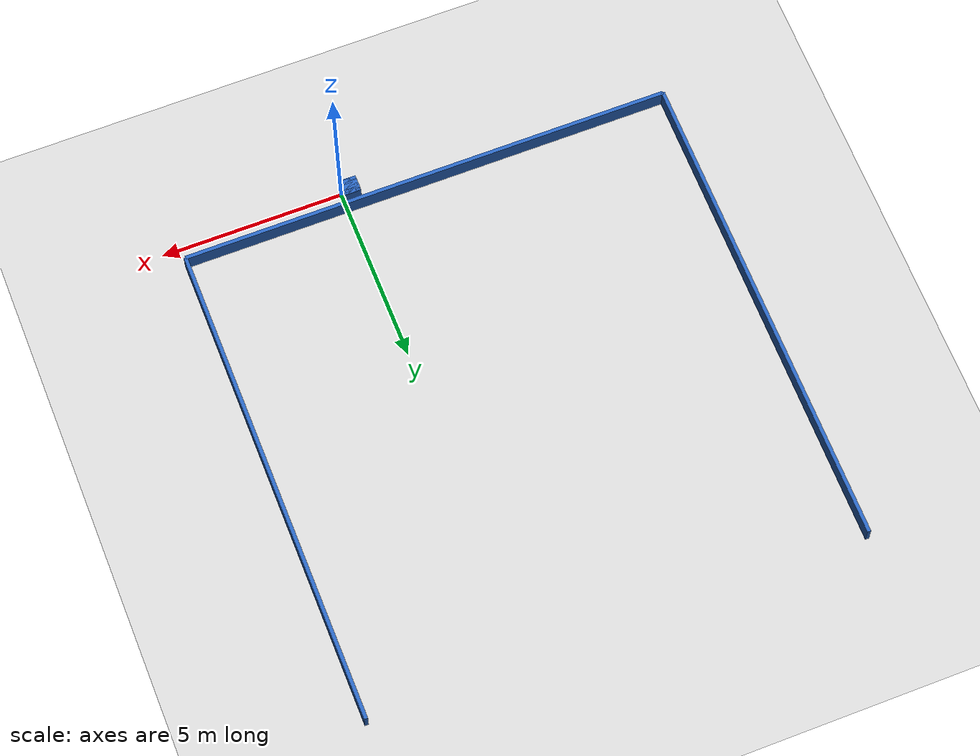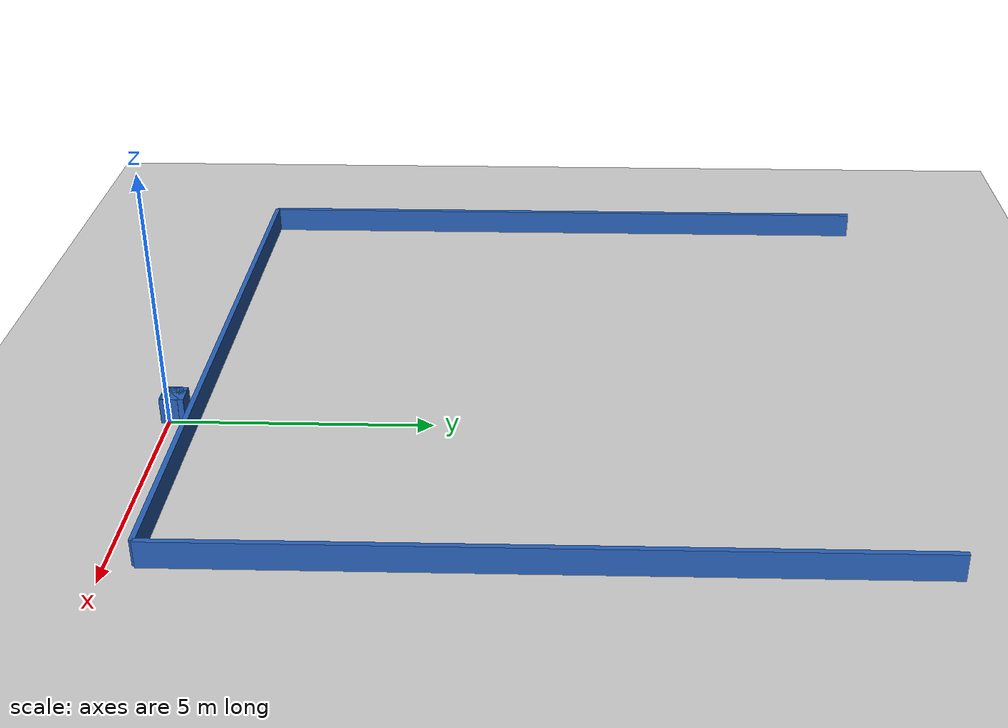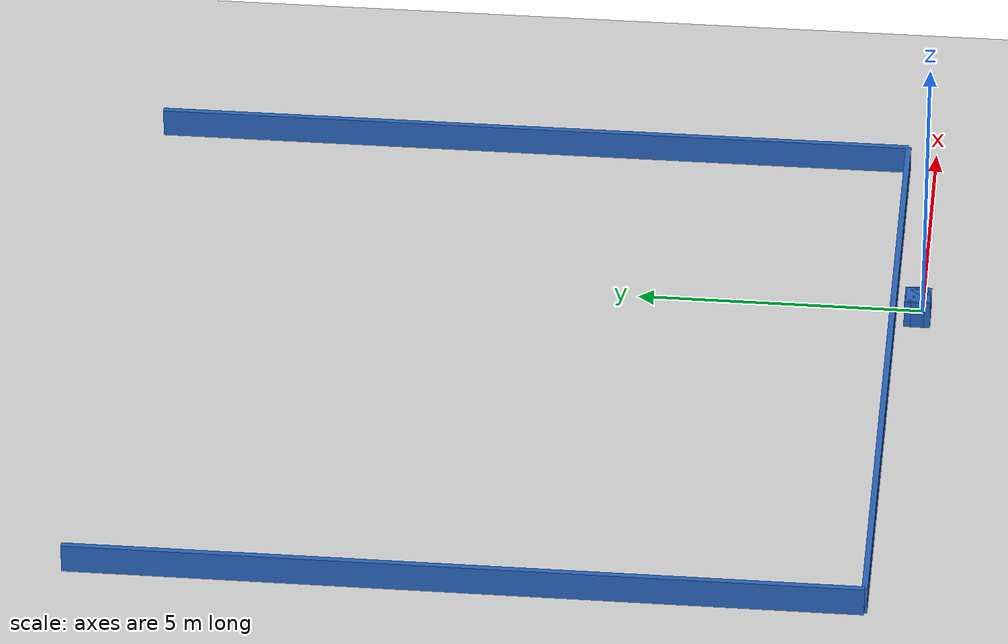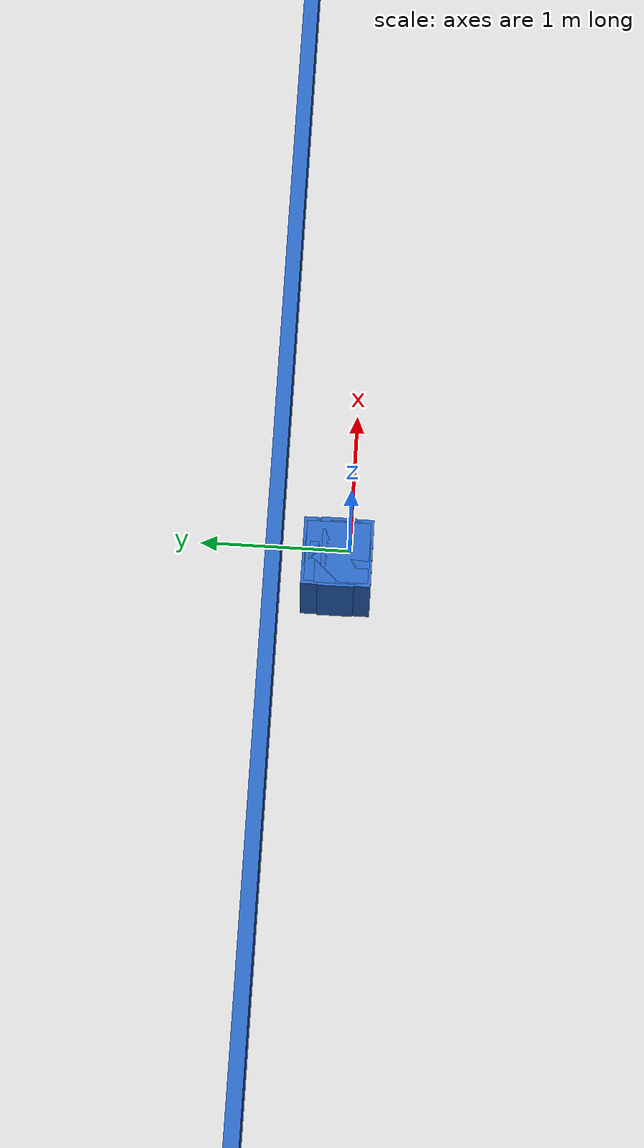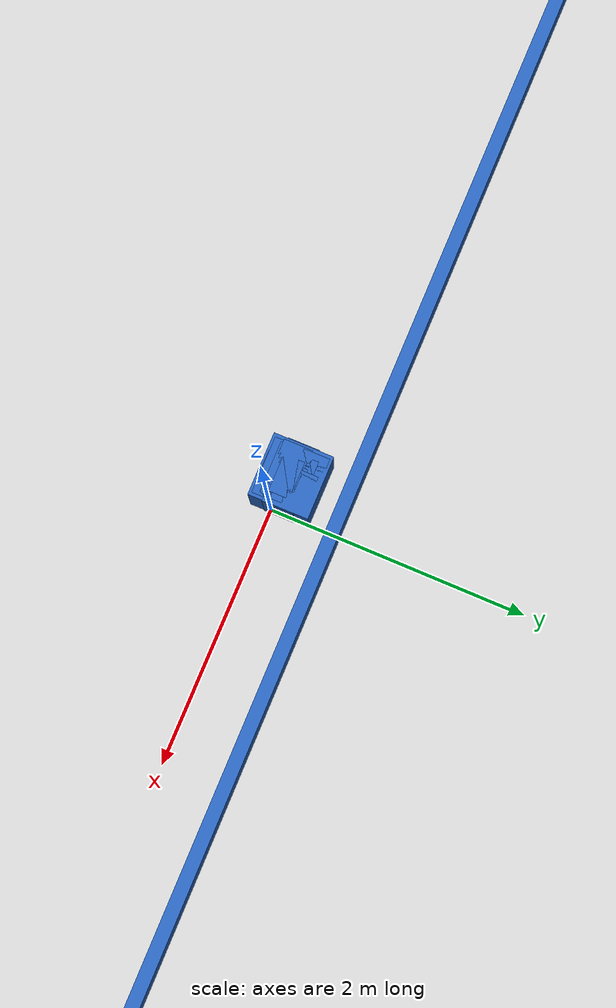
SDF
<?xml version="1.0" ?>
    <sdf version="1.5">
      <world name="default">
        <!-- A global light source -->
        <include>
          <uri>model://sun</uri>
        </include>
        <!-- A ground plane -->
        <include>
          <uri>model://ground_plane</uri>
        </include>

    <model name='libopen_space_final_T2B_103_85'>
      <static>1</static>
      <pose frame=''>-0.225000 0.075000 0.000000 0.000000 0.000000 0.000000</pose>
      <link name='link'>
        <inertial>
          <mass>1</mass>
          <inertia>
            <ixx>0.145833</ixx>
            <ixy>0</ixy>
            <ixz>0</ixz>
            <iyy>0.145833</iyy>
            <iyz>0</iyz>
            <izz>0.125</izz>
          </inertia>
        </inertial>
        <collision name='collision'>
          <geometry>
            <box>
              <size>0.32 0.21 1</size>
            </box>
          </geometry>
          <max_contacts>10</max_contacts>
          <surface>
            <contact>
              <ode/>
            </contact>
            <bounce/>
            <friction>
              <torsional>
                <ode/>
              </torsional>
              <ode/>
            </friction>
          </surface>
        </collision>
        <visual name='visual'>
          <geometry>
            <box>
              <size>0.32 0.21 1</size>
            </box>
          </geometry>
	    <material>
              <ambient>0.152000 0.379000 0.720000 1</ambient>
	      <diffuse>0.152000 0.379000 0.720000 1</diffuse>
          </material>
          <material>
            <script>
              <name>Gazebo/Grey</name>
              <uri>file://media/materials/scripts/gazebo.material</uri>
            </script>
          </material>
        </visual>
        <self_collide>0</self_collide>
        <kinematic>0</kinematic>
        <gravity>1</gravity>
      </link>
      <plugin name='libopen_space_final_T2B_103_85' filename='libopen_space_final_T2B_103_85.so'/>
    </model>

    <model name='libopen_space_final_T2B_120_45'>
      <static>1</static>
      <pose frame=''>-0.225000 0.075000 0.000000 0.000000 0.000000 0.000000</pose>
      <link name='link'>
        <inertial>
          <mass>1</mass>
          <inertia>
            <ixx>0.145833</ixx>
            <ixy>0</ixy>
            <ixz>0</ixz>
            <iyy>0.145833</iyy>
            <iyz>0</iyz>
            <izz>0.125</izz>
          </inertia>
        </inertial>
        <collision name='collision'>
          <geometry>
            <box>
              <size>0.43 0.42 1</size>
            </box>
          </geometry>
          <max_contacts>10</max_contacts>
          <surface>
            <contact>
              <ode/>
            </contact>
            <bounce/>
            <friction>
              <torsional>
                <ode/>
              </torsional>
              <ode/>
            </friction>
          </surface>
        </collision>
        <visual name='visual'>
          <geometry>
            <box>
              <size>0.43 0.42 1</size>
            </box>
          </geometry>
	    <material>
              <ambient>0.152000 0.379000 0.720000 1</ambient>
	      <diffuse>0.152000 0.379000 0.720000 1</diffuse>
          </material>
          <material>
            <script>
              <name>Gazebo/Grey</name>
              <uri>file://media/materials/scripts/gazebo.material</uri>
            </script>
          </material>
        </visual>
        <self_collide>0</self_collide>
        <kinematic>0</kinematic>
        <gravity>1</gravity>
      </link>
      <plugin name='libopen_space_final_T2B_120_45' filename='libopen_space_final_T2B_120_45.so'/>
    </model>

    <model name='libopen_space_final_T2B_111_12'>
      <static>1</static>
      <pose frame=''>-0.225000 0.075000 0.000000 0.000000 0.000000 0.000000</pose>
      <link name='link'>
        <inertial>
          <mass>1</mass>
          <inertia>
            <ixx>0.145833</ixx>
            <ixy>0</ixy>
            <ixz>0</ixz>
            <iyy>0.145833</iyy>
            <iyz>0</iyz>
            <izz>0.125</izz>
          </inertia>
        </inertial>
        <collision name='collision'>
          <geometry>
            <box>
              <size>0.45 0.29 1</size>
            </box>
          </geometry>
          <max_contacts>10</max_contacts>
          <surface>
            <contact>
              <ode/>
            </contact>
            <bounce/>
            <friction>
              <torsional>
                <ode/>
              </torsional>
              <ode/>
            </friction>
          </surface>
        </collision>
        <visual name='visual'>
          <geometry>
            <box>
              <size>0.45 0.29 1</size>
            </box>
          </geometry>
	    <material>
              <ambient>0.152000 0.379000 0.720000 1</ambient>
	      <diffuse>0.152000 0.379000 0.720000 1</diffuse>
          </material>
          <material>
            <script>
              <name>Gazebo/Grey</name>
              <uri>file://media/materials/scripts/gazebo.material</uri>
            </script>
          </material>
        </visual>
        <self_collide>0</self_collide>
        <kinematic>0</kinematic>
        <gravity>1</gravity>
      </link>
      <plugin name='libopen_space_final_T2B_111_12' filename='libopen_space_final_T2B_111_12.so'/>
    </model>

    <model name='libopen_space_final_T2B_122_2'>
      <static>1</static>
      <pose frame=''>-0.225000 0.075000 0.000000 0.000000 0.000000 0.000000</pose>
      <link name='link'>
        <inertial>
          <mass>1</mass>
          <inertia>
            <ixx>0.145833</ixx>
            <ixy>0</ixy>
            <ixz>0</ixz>
            <iyy>0.145833</iyy>
            <iyz>0</iyz>
            <izz>0.125</izz>
          </inertia>
        </inertial>
        <collision name='collision'>
          <geometry>
            <box>
              <size>0.49 0.24 1</size>
            </box>
          </geometry>
          <max_contacts>10</max_contacts>
          <surface>
            <contact>
              <ode/>
            </contact>
            <bounce/>
            <friction>
              <torsional>
                <ode/>
              </torsional>
              <ode/>
            </friction>
          </surface>
        </collision>
        <visual name='visual'>
          <geometry>
            <box>
              <size>0.49 0.24 1</size>
            </box>
          </geometry>
	    <material>
              <ambient>0.152000 0.379000 0.720000 1</ambient>
	      <diffuse>0.152000 0.379000 0.720000 1</diffuse>
          </material>
          <material>
            <script>
              <name>Gazebo/Grey</name>
              <uri>file://media/materials/scripts/gazebo.material</uri>
            </script>
          </material>
        </visual>
        <self_collide>0</self_collide>
        <kinematic>0</kinematic>
        <gravity>1</gravity>
      </link>
      <plugin name='libopen_space_final_T2B_122_2' filename='libopen_space_final_T2B_122_2.so'/>
    </model>

    <model name='libopen_space_final_T2B_125_48'>
      <static>1</static>
      <pose frame=''>-0.225000 0.075000 0.000000 0.000000 0.000000 0.000000</pose>
      <link name='link'>
        <inertial>
          <mass>1</mass>
          <inertia>
            <ixx>0.145833</ixx>
            <ixy>0</ixy>
            <ixz>0</ixz>
            <iyy>0.145833</iyy>
            <iyz>0</iyz>
            <izz>0.125</izz>
          </inertia>
        </inertial>
        <collision name='collision'>
          <geometry>
            <box>
              <size>0.48 0.46 1</size>
            </box>
          </geometry>
          <max_contacts>10</max_contacts>
          <surface>
            <contact>
              <ode/>
            </contact>
            <bounce/>
            <friction>
              <torsional>
                <ode/>
              </torsional>
              <ode/>
            </friction>
          </surface>
        </collision>
        <visual name='visual'>
          <geometry>
            <box>
              <size>0.48 0.46 1</size>
            </box>
          </geometry>
	    <material>
              <ambient>0.152000 0.379000 0.720000 1</ambient>
	      <diffuse>0.152000 0.379000 0.720000 1</diffuse>
          </material>
          <material>
            <script>
              <name>Gazebo/Grey</name>
              <uri>file://media/materials/scripts/gazebo.material</uri>
            </script>
          </material>
        </visual>
        <self_collide>0</self_collide>
        <kinematic>0</kinematic>
        <gravity>1</gravity>
      </link>
      <plugin name='libopen_space_final_T2B_125_48' filename='libopen_space_final_T2B_125_48.so'/>
    </model>

    <model name='libopen_space_final_T2B_85_42'>
      <static>1</static>
      <pose frame=''>-0.225000 0.075000 0.000000 0.000000 0.000000 0.000000</pose>
      <link name='link'>
        <inertial>
          <mass>1</mass>
          <inertia>
            <ixx>0.145833</ixx>
            <ixy>0</ixy>
            <ixz>0</ixz>
            <iyy>0.145833</iyy>
            <iyz>0</iyz>
            <izz>0.125</izz>
          </inertia>
        </inertial>
        <collision name='collision'>
          <geometry>
            <box>
              <size>0.41 0.15 1</size>
            </box>
          </geometry>
          <max_contacts>10</max_contacts>
          <surface>
            <contact>
              <ode/>
            </contact>
            <bounce/>
            <friction>
              <torsional>
                <ode/>
              </torsional>
              <ode/>
            </friction>
          </surface>
        </collision>
        <visual name='visual'>
          <geometry>
            <box>
              <size>0.41 0.15 1</size>
            </box>
          </geometry>
	    <material>
              <ambient>0.152000 0.379000 0.720000 1</ambient>
	      <diffuse>0.152000 0.379000 0.720000 1</diffuse>
          </material>
          <material>
            <script>
              <name>Gazebo/Grey</name>
              <uri>file://media/materials/scripts/gazebo.material</uri>
            </script>
          </material>
        </visual>
        <self_collide>0</self_collide>
        <kinematic>0</kinematic>
        <gravity>1</gravity>
      </link>
      <plugin name='libopen_space_final_T2B_85_42' filename='libopen_space_final_T2B_85_42.so'/>
    </model>

    <model name='libopen_space_final_T2B_61_88'>
      <static>1</static>
      <pose frame=''>-0.225000 0.075000 0.000000 0.000000 0.000000 0.000000</pose>
      <link name='link'>
        <inertial>
          <mass>1</mass>
          <inertia>
            <ixx>0.145833</ixx>
            <ixy>0</ixy>
            <ixz>0</ixz>
            <iyy>0.145833</iyy>
            <iyz>0</iyz>
            <izz>0.125</izz>
          </inertia>
        </inertial>
        <collision name='collision'>
          <geometry>
            <box>
              <size>0.32 0.32 1</size>
            </box>
          </geometry>
          <max_contacts>10</max_contacts>
          <surface>
            <contact>
              <ode/>
            </contact>
            <bounce/>
            <friction>
              <torsional>
                <ode/>
              </torsional>
              <ode/>
            </friction>
          </surface>
        </collision>
        <visual name='visual'>
          <geometry>
            <box>
              <size>0.32 0.32 1</size>
            </box>
          </geometry>
	    <material>
              <ambient>0.152000 0.379000 0.720000 1</ambient>
	      <diffuse>0.152000 0.379000 0.720000 1</diffuse>
          </material>
          <material>
            <script>
              <name>Gazebo/Grey</name>
              <uri>file://media/materials/scripts/gazebo.material</uri>
            </script>
          </material>
        </visual>
        <self_collide>0</self_collide>
        <kinematic>0</kinematic>
        <gravity>1</gravity>
      </link>
      <plugin name='libopen_space_final_T2B_61_88' filename='libopen_space_final_T2B_61_88.so'/>
    </model>

    <model name='libopen_space_final_T2B_112_98'>
      <static>1</static>
      <pose frame=''>-0.225000 0.075000 0.000000 0.000000 0.000000 0.000000</pose>
      <link name='link'>
        <inertial>
          <mass>1</mass>
          <inertia>
            <ixx>0.145833</ixx>
            <ixy>0</ixy>
            <ixz>0</ixz>
            <iyy>0.145833</iyy>
            <iyz>0</iyz>
            <izz>0.125</izz>
          </inertia>
        </inertial>
        <collision name='collision'>
          <geometry>
            <box>
              <size>0.33 0.29 1</size>
            </box>
          </geometry>
          <max_contacts>10</max_contacts>
          <surface>
            <contact>
              <ode/>
            </contact>
            <bounce/>
            <friction>
              <torsional>
                <ode/>
              </torsional>
              <ode/>
            </friction>
          </surface>
        </collision>
        <visual name='visual'>
          <geometry>
            <box>
              <size>0.33 0.29 1</size>
            </box>
          </geometry>
	    <material>
              <ambient>0.152000 0.379000 0.720000 1</ambient>
	      <diffuse>0.152000 0.379000 0.720000 1</diffuse>
          </material>
          <material>
            <script>
              <name>Gazebo/Grey</name>
              <uri>file://media/materials/scripts/gazebo.material</uri>
            </script>
          </material>
        </visual>
        <self_collide>0</self_collide>
        <kinematic>0</kinematic>
        <gravity>1</gravity>
      </link>
      <plugin name='libopen_space_final_T2B_112_98' filename='libopen_space_final_T2B_112_98.so'/>
    </model>

    <model name='libopen_space_final_T2B_81_89'>
      <static>1</static>
      <pose frame=''>-0.225000 0.075000 0.000000 0.000000 0.000000 0.000000</pose>
      <link name='link'>
        <inertial>
          <mass>1</mass>
          <inertia>
            <ixx>0.145833</ixx>
            <ixy>0</ixy>
            <ixz>0</ixz>
            <iyy>0.145833</iyy>
            <iyz>0</iyz>
            <izz>0.125</izz>
          </inertia>
        </inertial>
        <collision name='collision'>
          <geometry>
            <box>
              <size>0.17 0.19 1</size>
            </box>
          </geometry>
          <max_contacts>10</max_contacts>
          <surface>
            <contact>
              <ode/>
            </contact>
            <bounce/>
            <friction>
              <torsional>
                <ode/>
              </torsional>
              <ode/>
            </friction>
          </surface>
        </collision>
        <visual name='visual'>
          <geometry>
            <box>
              <size>0.17 0.19 1</size>
            </box>
          </geometry>
	    <material>
              <ambient>0.152000 0.379000 0.720000 1</ambient>
	      <diffuse>0.152000 0.379000 0.720000 1</diffuse>
          </material>
          <material>
            <script>
              <name>Gazebo/Grey</name>
              <uri>file://media/materials/scripts/gazebo.material</uri>
            </script>
          </material>
        </visual>
        <self_collide>0</self_collide>
        <kinematic>0</kinematic>
        <gravity>1</gravity>
      </link>
      <plugin name='libopen_space_final_T2B_81_89' filename='libopen_space_final_T2B_81_89.so'/>
    </model>

    <model name='libopen_space_final_T2B_112_54'>
      <static>1</static>
      <pose frame=''>-0.225000 0.075000 0.000000 0.000000 0.000000 0.000000</pose>
      <link name='link'>
        <inertial>
          <mass>1</mass>
          <inertia>
            <ixx>0.145833</ixx>
            <ixy>0</ixy>
            <ixz>0</ixz>
            <iyy>0.145833</iyy>
            <iyz>0</iyz>
            <izz>0.125</izz>
          </inertia>
        </inertial>
        <collision name='collision'>
          <geometry>
            <box>
              <size>0.25 0.11 1</size>
            </box>
          </geometry>
          <max_contacts>10</max_contacts>
          <surface>
            <contact>
              <ode/>
            </contact>
            <bounce/>
            <friction>
              <torsional>
                <ode/>
              </torsional>
              <ode/>
            </friction>
          </surface>
        </collision>
        <visual name='visual'>
          <geometry>
            <box>
              <size>0.25 0.11 1</size>
            </box>
          </geometry>
	    <material>
              <ambient>0.152000 0.379000 0.720000 1</ambient>
	      <diffuse>0.152000 0.379000 0.720000 1</diffuse>
          </material>
          <material>
            <script>
              <name>Gazebo/Grey</name>
              <uri>file://media/materials/scripts/gazebo.material</uri>
            </script>
          </material>
        </visual>
        <self_collide>0</self_collide>
        <kinematic>0</kinematic>
        <gravity>1</gravity>
      </link>
      <plugin name='libopen_space_final_T2B_112_54' filename='libopen_space_final_T2B_112_54.so'/>
    </model>

    <model name='libopen_space_final_T2B_140_51'>
      <static>1</static>
      <pose frame=''>-0.225000 0.075000 0.000000 0.000000 0.000000 0.000000</pose>
      <link name='link'>
        <inertial>
          <mass>1</mass>
          <inertia>
            <ixx>0.145833</ixx>
            <ixy>0</ixy>
            <ixz>0</ixz>
            <iyy>0.145833</iyy>
            <iyz>0</iyz>
            <izz>0.125</izz>
          </inertia>
        </inertial>
        <collision name='collision'>
          <geometry>
            <box>
              <size>0.22 0.43 1</size>
            </box>
          </geometry>
          <max_contacts>10</max_contacts>
          <surface>
            <contact>
              <ode/>
            </contact>
            <bounce/>
            <friction>
              <torsional>
                <ode/>
              </torsional>
              <ode/>
            </friction>
          </surface>
        </collision>
        <visual name='visual'>
          <geometry>
            <box>
              <size>0.22 0.43 1</size>
            </box>
          </geometry>
	    <material>
              <ambient>0.152000 0.379000 0.720000 1</ambient>
	      <diffuse>0.152000 0.379000 0.720000 1</diffuse>
          </material>
          <material>
            <script>
              <name>Gazebo/Grey</name>
              <uri>file://media/materials/scripts/gazebo.material</uri>
            </script>
          </material>
        </visual>
        <self_collide>0</self_collide>
        <kinematic>0</kinematic>
        <gravity>1</gravity>
      </link>
      <plugin name='libopen_space_final_T2B_140_51' filename='libopen_space_final_T2B_140_51.so'/>
    </model>

    <model name='libopen_space_final_T2B_91_57'>
      <static>1</static>
      <pose frame=''>-0.225000 0.075000 0.000000 0.000000 0.000000 0.000000</pose>
      <link name='link'>
        <inertial>
          <mass>1</mass>
          <inertia>
            <ixx>0.145833</ixx>
            <ixy>0</ixy>
            <ixz>0</ixz>
            <iyy>0.145833</iyy>
            <iyz>0</iyz>
            <izz>0.125</izz>
          </inertia>
        </inertial>
        <collision name='collision'>
          <geometry>
            <box>
              <size>0.13 0.37 1</size>
            </box>
          </geometry>
          <max_contacts>10</max_contacts>
          <surface>
            <contact>
              <ode/>
            </contact>
            <bounce/>
            <friction>
              <torsional>
                <ode/>
              </torsional>
              <ode/>
            </friction>
          </surface>
        </collision>
        <visual name='visual'>
          <geometry>
            <box>
              <size>0.13 0.37 1</size>
            </box>
          </geometry>
	    <material>
              <ambient>0.152000 0.379000 0.720000 1</ambient>
	      <diffuse>0.152000 0.379000 0.720000 1</diffuse>
          </material>
          <material>
            <script>
              <name>Gazebo/Grey</name>
              <uri>file://media/materials/scripts/gazebo.material</uri>
            </script>
          </material>
        </visual>
        <self_collide>0</self_collide>
        <kinematic>0</kinematic>
        <gravity>1</gravity>
      </link>
      <plugin name='libopen_space_final_T2B_91_57' filename='libopen_space_final_T2B_91_57.so'/>
    </model>

    <model name='libopen_space_final_T2B_81_68'>
      <static>1</static>
      <pose frame=''>-0.225000 0.075000 0.000000 0.000000 0.000000 0.000000</pose>
      <link name='link'>
        <inertial>
          <mass>1</mass>
          <inertia>
            <ixx>0.145833</ixx>
            <ixy>0</ixy>
            <ixz>0</ixz>
            <iyy>0.145833</iyy>
            <iyz>0</iyz>
            <izz>0.125</izz>
          </inertia>
        </inertial>
        <collision name='collision'>
          <geometry>
            <box>
              <size>0.40 0.32 1</size>
            </box>
          </geometry>
          <max_contacts>10</max_contacts>
          <surface>
            <contact>
              <ode/>
            </contact>
            <bounce/>
            <friction>
              <torsional>
                <ode/>
              </torsional>
              <ode/>
            </friction>
          </surface>
        </collision>
        <visual name='visual'>
          <geometry>
            <box>
              <size>0.40 0.32 1</size>
            </box>
          </geometry>
	    <material>
              <ambient>0.152000 0.379000 0.720000 1</ambient>
	      <diffuse>0.152000 0.379000 0.720000 1</diffuse>
          </material>
          <material>
            <script>
              <name>Gazebo/Grey</name>
              <uri>file://media/materials/scripts/gazebo.material</uri>
            </script>
          </material>
        </visual>
        <self_collide>0</self_collide>
        <kinematic>0</kinematic>
        <gravity>1</gravity>
      </link>
      <plugin name='libopen_space_final_T2B_81_68' filename='libopen_space_final_T2B_81_68.so'/>
    </model>

        <model name='bottom_wall'>
          <static>1</static>
          <pose frame=''>-2.25 0.5 0.000000 0.000000 0.000000 1.57079632</pose>
          <link name='link'>
            <inertial>
            <mass>1</mass>
            <inertia>
              <ixx>0.145833</ixx>
              <ixy>0</ixy>
              <ixz>0</ixz>
              <iyy>0.145833</iyy>
              <iyz>0</iyz>
              <izz>0.125</izz>
            </inertia>
            </inertial>
            <collision name='collision'>
            <geometry>
              <box>
              <size>0.1 13.5 1</size>
              </box>
            </geometry>
            <max_contacts>10</max_contacts>
            <surface>
              <contact>
              <ode/>
              </contact>
              <bounce/>
              <friction>
              <torsional>
                <ode/>
              </torsional>
              <ode/>
              </friction>
            </surface>
            </collision>
            <visual name='visual'>
            <geometry>
              <box>
              <size>0.1 13.5 1</size>
              </box>
            </geometry>
            <material>
              <ambient>0.152000 0.379000 0.720000 1</ambient>
            <diffuse>0.152000 0.379000 0.720000 1</diffuse>
            </material>
            <material>
              <script>
              <name>Gazebo/Grey</name>
              <uri>file://media/materials/scripts/gazebo.material</uri>
              </script>
            </material>
            </visual>
            <self_collide>0</self_collide>
            <kinematic>0</kinematic>
            <gravity>1</gravity>
          </link>
        </model>

        <model name='left_wall'>
          <static>1</static>
          <pose frame=''>-9 7.25 0.000000 0.000000 0.000000 0.000000</pose>
          <link name='link'>
            <inertial>
            <mass>1</mass>
            <inertia>
              <ixx>0.145833</ixx>
              <ixy>0</ixy>
              <ixz>0</ixz>
              <iyy>0.145833</iyy>
              <iyz>0</iyz>
              <izz>0.125</izz>
            </inertia>
            </inertial>
            <collision name='collision'>
            <geometry>
              <box>
              <size>0.1 13.5 1</size>
              </box>
            </geometry>
            <max_contacts>10</max_contacts>
            <surface>
              <contact>
              <ode/>
              </contact>
              <bounce/>
              <friction>
              <torsional>
                <ode/>
              </torsional>
              <ode/>
              </friction>
            </surface>
            </collision>
            <visual name='visual'>
            <geometry>
              <box>
              <size>0.1 13.5 1</size>
              </box>
            </geometry>
            <material>
              <ambient>0.152000 0.379000 0.720000 1</ambient>
            <diffuse>0.152000 0.379000 0.720000 1</diffuse>
            </material>
            <material>
              <script>
              <name>Gazebo/Grey</name>
              <uri>file://media/materials/scripts/gazebo.material</uri>
              </script>
            </material>
            </visual>
            <self_collide>0</self_collide>
            <kinematic>0</kinematic>
            <gravity>1</gravity>
          </link>
        </model>

        <model name='right_wall'>
          <static>1</static>
          <pose frame=''>4.5 7.25 0.000000 0.000000 0.000000 0.000000</pose>
          <link name='link'>
            <inertial>
            <mass>1</mass>
            <inertia>
              <ixx>0.145833</ixx>
              <ixy>0</ixy>
              <ixz>0</ixz>
              <iyy>0.145833</iyy>
              <iyz>0</iyz>
              <izz>0.125</izz>
            </inertia>
            </inertial>
            <collision name='collision'>
            <geometry>
              <box>
              <size>0.1 13.5 1</size>
              </box>
            </geometry>
            <max_contacts>10</max_contacts>
            <surface>
              <contact>
              <ode/>
              </contact>
              <bounce/>
              <friction>
              <torsional>
                <ode/>
              </torsional>
              <ode/>
              </friction>
            </surface>
            </collision>
            <visual name='visual'>
            <geometry>
              <box>
              <size>0.1 13.5 1</size>
              </box>
            </geometry>
            <material>
              <ambient>0.152000 0.379000 0.720000 1</ambient>
            <diffuse>0.152000 0.379000 0.720000 1</diffuse>
            </material>
            <material>
              <script>
              <name>Gazebo/Grey</name>
              <uri>file://media/materials/scripts/gazebo.material</uri>
              </script>
            </material>
            </visual>
            <self_collide>0</self_collide>
            <kinematic>0</kinematic>
            <gravity>1</gravity>
          </link>
        </model>

      </world>
    </sdf>"
